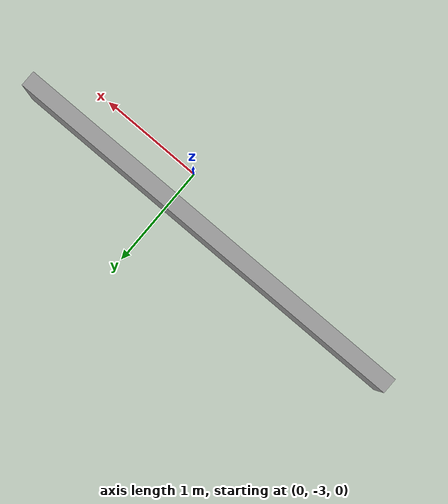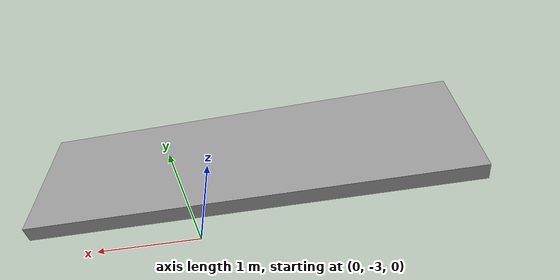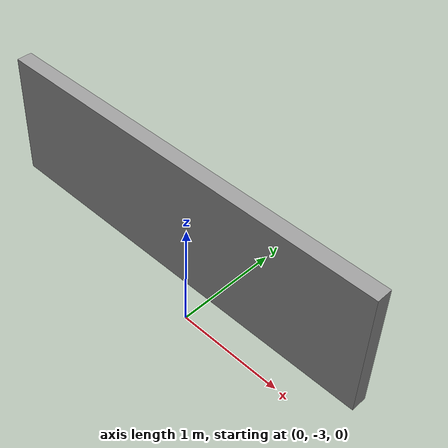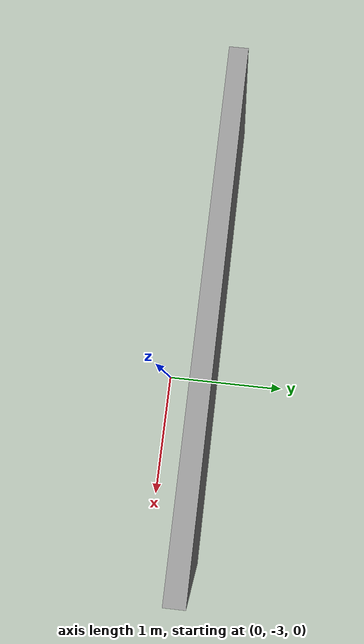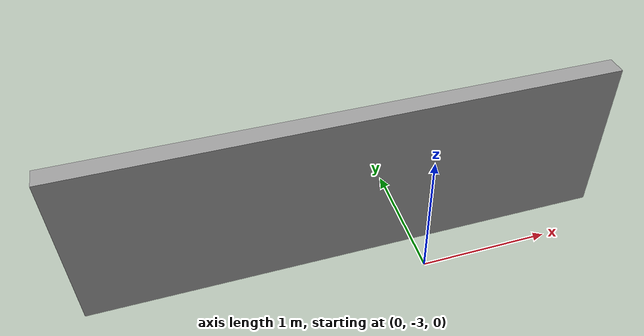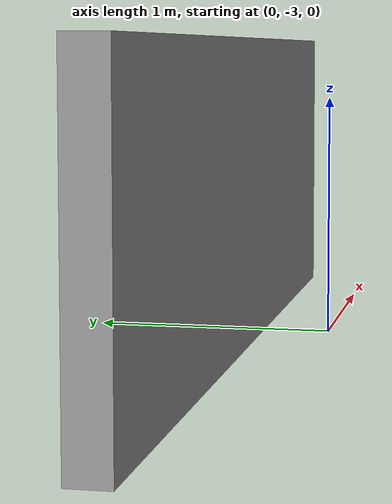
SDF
<?xml version='1.0'?>
<sdf version='1.6'>
  <model name='wall'>
    <pose frame=''>-0.465 -2.65 0 0 -0 0</pose>
    <link name='Wall_0'>
      <collision name='Wall_0_Collision'>
        <geometry>
          <box>
            <size>4 0.15 1.25</size>
          </box>
        </geometry>
        <pose frame=''>0 0 .625 0 -0 0</pose>
      </collision>
      <visual name='Wall_0_Visual'>
        <pose frame=''>0 0 .625 0 -0 0</pose>
        <geometry>
          <box>
            <size>4 0.15 1.25</size>
          </box>
        </geometry>
        <material>
          <script>
            <uri>file://media/materials/scripts/gazebo.material</uri>
            <name>Gazebo/Grey</name>
          </script>
          <ambient>1 1 1 1</ambient>
        </material>
      </visual>
      <pose frame=''>0 0 0 0 -0 0</pose>
    </link>
    <static>1</static>
  </model>
</sdf>
